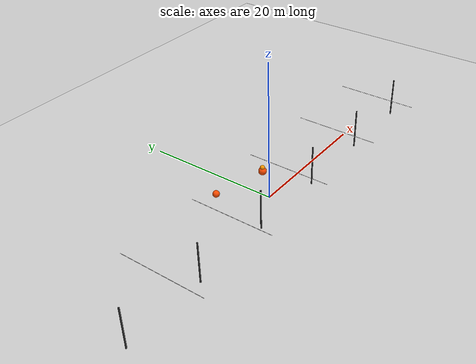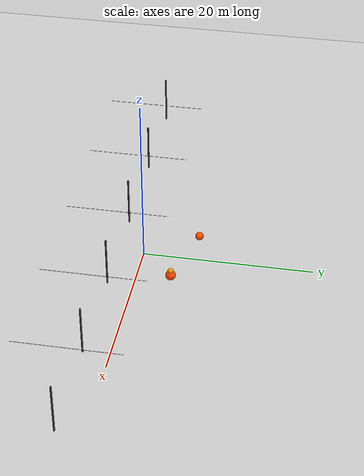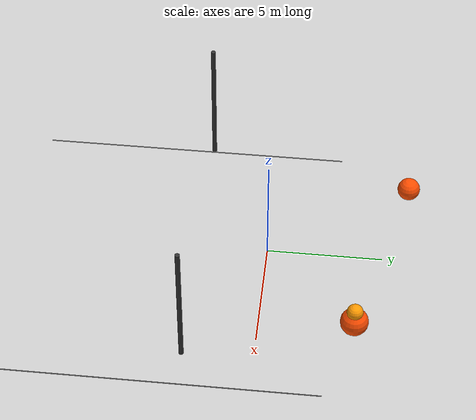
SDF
<sdf version="1.6">
 <world name="default">
  <include><uri>model://sun</uri></include>
  <include><uri>model://ground_plane</uri></include>
  <physics type="ode">
   <real_time_update_rate>250</real_time_update_rate>
   <max_step_size>0.004</max_step_size>
   <real_time_factor>1</real_time_factor>
  </physics>
  <model name="cable_pole_1">
   <static>true</static>
   <pose>-30 -3 0 0 0 0</pose>
   <link name="link">
    <visual name="visual">
     <geometry><cylinder><radius>0.1</radius><length>6</length></cylinder></geometry>
     <pose>0 0 3 0 0 0</pose>
     <material><ambient>0.2 0.2 0.2 1</ambient><diffuse>0.2 0.2 0.2 1</diffuse></material>
    </visual>
    <collision name="collision">
     <geometry><cylinder><radius>0.1</radius><length>6</length></cylinder></geometry>
     <pose>0 0 3 0 0 0</pose>
    </collision>
   </link>
  </model>
  <model name="cable_pole_2">
   <static>true</static>
   <pose>-18 -3 0 0 0 0</pose>
   <link name="link">
    <visual name="visual">
     <geometry><cylinder><radius>0.1</radius><length>6</length></cylinder></geometry>
     <pose>0 0 3 0 0 0</pose>
     <material><ambient>0.2 0.2 0.2 1</ambient><diffuse>0.2 0.2 0.2 1</diffuse></material>
    </visual>
    <collision name="collision">
     <geometry><cylinder><radius>0.1</radius><length>6</length></cylinder></geometry>
     <pose>0 0 3 0 0 0</pose>
    </collision>
   </link>
  </model>
  <model name="cable_pole_3">
   <static>true</static>
   <pose>-6 -3 0 0 0 0</pose>
   <link name="link">
    <visual name="visual">
     <geometry><cylinder><radius>0.1</radius><length>6</length></cylinder></geometry>
     <pose>0 0 3 0 0 0</pose>
     <material><ambient>0.2 0.2 0.2 1</ambient><diffuse>0.2 0.2 0.2 1</diffuse></material>
    </visual>
    <collision name="collision">
     <geometry><cylinder><radius>0.1</radius><length>6</length></cylinder></geometry>
     <pose>0 0 3 0 0 0</pose>
    </collision>
   </link>
  </model>
  <model name="cable_pole_4">
   <static>true</static>
   <pose>6 -3 0 0 0 0</pose>
   <link name="link">
    <visual name="visual">
     <geometry><cylinder><radius>0.1</radius><length>6</length></cylinder></geometry>
     <pose>0 0 3 0 0 0</pose>
     <material><ambient>0.2 0.2 0.2 1</ambient><diffuse>0.2 0.2 0.2 1</diffuse></material>
    </visual>
    <collision name="collision">
     <geometry><cylinder><radius>0.1</radius><length>6</length></cylinder></geometry>
     <pose>0 0 3 0 0 0</pose>
    </collision>
   </link>
  </model>
  <model name="cable_pole_5">
   <static>true</static>
   <pose>18 -3 0 0 0 0</pose>
   <link name="link">
    <visual name="visual">
     <geometry><cylinder><radius>0.1</radius><length>6</length></cylinder></geometry>
     <pose>0 0 3 0 0 0</pose>
     <material><ambient>0.2 0.2 0.2 1</ambient><diffuse>0.2 0.2 0.2 1</diffuse></material>
    </visual>
    <collision name="collision">
     <geometry><cylinder><radius>0.1</radius><length>6</length></cylinder></geometry>
     <pose>0 0 3 0 0 0</pose>
    </collision>
   </link>
  </model>
  <model name="cable_pole_6">
   <static>true</static>
   <pose>30 -3 0 0 0 0</pose>
   <link name="link">
    <visual name="visual">
     <geometry><cylinder><radius>0.1</radius><length>6</length></cylinder></geometry>
     <pose>0 0 3 0 0 0</pose>
     <material><ambient>0.2 0.2 0.2 1</ambient><diffuse>0.2 0.2 0.2 1</diffuse></material>
    </visual>
    <collision name="collision">
     <geometry><cylinder><radius>0.1</radius><length>6</length></cylinder></geometry>
     <pose>0 0 3 0 0 0</pose>
    </collision>
   </link>
  </model>
  <model name="cable_segment_1">
   <static>true</static>
   <pose>-24 -3 5.8 1.5708 0 0</pose>
   <link name="link">
    <visual name="visual">
     <geometry><cylinder><radius>0.02</radius><length>12</length></cylinder></geometry>
     <material><ambient>0.05 0.05 0.05 1</ambient><diffuse>0.05 0.05 0.05 1</diffuse></material>
    </visual>
   </link>
  </model>
  <model name="cable_segment_2">
   <static>true</static>
   <pose>-12 -3 5.8 1.5708 0 0</pose>
   <link name="link">
    <visual name="visual">
     <geometry><cylinder><radius>0.02</radius><length>12</length></cylinder></geometry>
     <material><ambient>0.05 0.05 0.05 1</ambient><diffuse>0.05 0.05 0.05 1</diffuse></material>
    </visual>
   </link>
  </model>
  <model name="cable_segment_3">
   <static>true</static>
   <pose>0 -3 5.8 1.5708 0 0</pose>
   <link name="link">
    <visual name="visual">
     <geometry><cylinder><radius>0.02</radius><length>12</length></cylinder></geometry>
     <material><ambient>0.05 0.05 0.05 1</ambient><diffuse>0.05 0.05 0.05 1</diffuse></material>
    </visual>
   </link>
  </model>
  <model name="cable_segment_4">
   <static>true</static>
   <pose>12 -3 5.8 1.5708 0 0</pose>
   <link name="link">
    <visual name="visual">
     <geometry><cylinder><radius>0.02</radius><length>12</length></cylinder></geometry>
     <material><ambient>0.05 0.05 0.05 1</ambient><diffuse>0.05 0.05 0.05 1</diffuse></material>
    </visual>
   </link>
  </model>
  <model name="cable_segment_5">
   <static>true</static>
   <pose>24 -3 5.8 1.5708 0 0</pose>
   <link name="link">
    <visual name="visual">
     <geometry><cylinder><radius>0.02</radius><length>12</length></cylinder></geometry>
     <material><ambient>0.05 0.05 0.05 1</ambient><diffuse>0.05 0.05 0.05 1</diffuse></material>
    </visual>
   </link>
  </model>
  <model name="fire_1">
   <static>true</static>
   <pose>4 4 0 0 0 0</pose>
   <link name="link">
    <visual name="flame_base">
     <geometry><sphere><radius>0.6</radius></sphere></geometry>
     <pose>0 0 0.5 0 0 0</pose>
     <material><ambient>1 0.3 0 1</ambient><diffuse>1 0.3 0 1</diffuse><emissive>1 0.4 0 1</emissive></material>
    </visual>
    <visual name="flame_top">
     <geometry><sphere><radius>0.35</radius></sphere></geometry>
     <pose>0 0 1.1 0 0 0</pose>
     <material><ambient>1 0.6 0 1</ambient><diffuse>1 0.6 0 1</diffuse><emissive>1 0.6 0 1</emissive></material>
    </visual>
   </link>
  </model>
  <model name="fire_2">
   <static>true</static>
   <pose>-4 6 0 0 0 0</pose>
   <link name="link">
    <visual name="flame_base">
     <geometry><sphere><radius>0.5</radius></sphere></geometry>
     <pose>0 0 0.45 0 0 0</pose>
     <material><ambient>1 0.3 0 1</ambient><diffuse>1 0.3 0 1</diffuse><emissive>1 0.4 0 1</emissive></material>
    </visual>
   </link>
  </model>
 </world>
</sdf>
